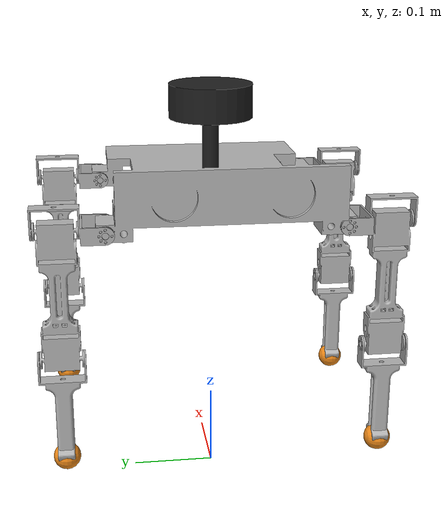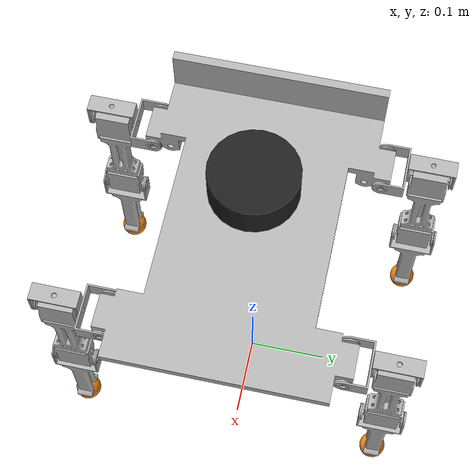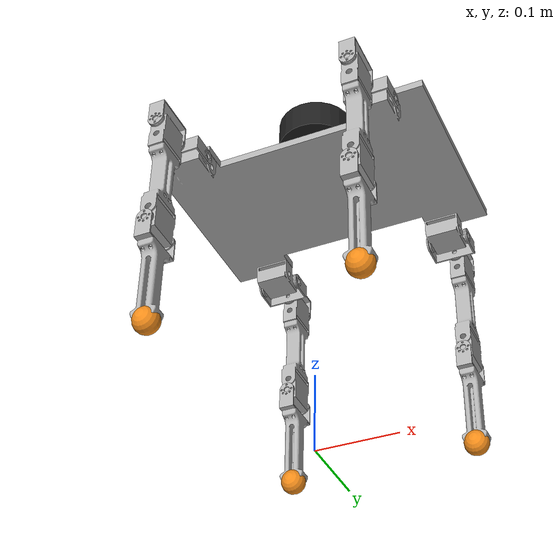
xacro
<?xml version="1.0" ?>
<robot name="FusionComponent" xmlns:xacro="http://www.ros.org/wiki/xacro">

<xacro:arg name="is_sim" default="true"/>

<xacro:include filename="$(find quadruped_description)/urdf/materials.xacro" />
<xacro:include filename="$(find quadruped_description)/urdf/bot_urdf_hii.gazebo" />
<xacro:include filename="$(find quadruped_description)/urdf/ros2_control.xacro" />
<xacro:include filename="$(find quadruped_description)/urdf/lidar.xacro" />

<xacro:macro name="box_inertia" params="m l w h xyz rpy">
  <inertial>
    <origin xyz="${xyz}" rpy="${rpy}" />
    <mass value="${m}" />
    <inertia ixx="${(m/12)*(h*h + l*l)}" ixy="0" ixz="0"
              iyy="${(m/12)*(w*w +l*l)}" iyz="0"
              izz="${(m/12)*(w*w + h*h)}" />
  </inertial>
</xacro:macro>

<link name="base_link">
<inertial>
  <origin xyz="0 0 0" rpy="0 0 0"/>
  <mass value="2.0"/>
  <inertia ixx="0.02303" iyy="0.02023" izz="0.03840"
           ixy="0.0" iyz="0.0" ixz="0.0"/>
</inertial>
  <visual>
    <origin xyz="0 0 0" rpy="0 0 0"/>
    <geometry>
      <mesh filename="file://$(find quadruped_description)/meshes/base_link.stl" scale="0.001 0.001 0.001"/>
    </geometry>
    <material name="silver"/>
  </visual>
  <collision>
    <origin xyz="0 0 0" rpy="0 0 0"/>
    <geometry>
      <mesh filename="file://$(find quadruped_description)/meshes/base_link.stl" scale="0.001 0.001 0.001"/>
    </geometry>
  </collision>
</link>

<link name="lb1">
  <inertial>
    <origin xyz="-0.0255 -0.0361 0.0088" rpy="0 0 0"/>
    <mass     value="0.1"/>
    <inertia  ixx="3.3e-05" iyy="3.3e-05" izz="6.7e-06"
              ixy="0.0"     iyz="0.0"     ixz="0.0"/>
  </inertial>
  <visual>
    <origin xyz="-0.159093 0.13841 -0.359825" rpy="0 0 0"/>
    <geometry>
      <mesh filename="file://$(find quadruped_description)/meshes/lb1_1.stl" scale="0.001 0.001 0.001"/>
    </geometry>
    <material name="silver"/>
  </visual>
  <collision>
    <origin xyz="-0.159093 0.13841 -0.359825" rpy="0 0 0"/>
    <geometry>
      <mesh filename="file://$(find quadruped_description)/meshes/lb1_1.stl" scale="0.001 0.001 0.001"/>
    </geometry>
  </collision>
</link>

<link name="lf1">
 <inertial>
    <origin xyz="-0.0255  0.0361 0.0088" rpy="0 0 0"/> <!-- mirrored Y -->
    <mass     value="0.1"/>
    <inertia  ixx="3.3e-05" iyy="3.3e-05" izz="6.7e-06"
              ixy="0.0"     iyz="0.0"     ixz="0.0"/>
  </inertial>
  <visual>
    <origin xyz="0.085907 0.13841 -0.359825" rpy="0 0 0"/>
    <geometry>
      <mesh filename="file://$(find quadruped_description)/meshes/lf1_1.stl" scale="0.001 0.001 0.001"/>
    </geometry>
    <material name="silver"/>
  </visual>
  <collision>
    <origin xyz="0.085907 0.13841 -0.359825" rpy="0 0 0"/>
    <geometry>
      <mesh filename="file://$(find quadruped_description)/meshes/lf1_1.stl" scale="0.001 0.001 0.001"/>
    </geometry>
  </collision>
</link>

<link name="rb1">
   <inertial>
    <origin xyz="-0.0255  0.0361 0.0088" rpy="0 0 0"/> <!-- mirrored Y -->
    <mass     value="0.1"/>
    <inertia  ixx="3.3e-05" iyy="3.3e-05" izz="6.7e-06"
              ixy="0.0"     iyz="0.0"     ixz="0.0"/>
  </inertial>
  <visual>
    <origin xyz="-0.159093 -0.13159 -0.359825" rpy="0 0 0"/>
    <geometry>
      <mesh filename="file://$(find quadruped_description)/meshes/rb1_1.stl" scale="0.001 0.001 0.001"/>
    </geometry>
    <material name="silver"/>
  </visual>
  <collision>
    <origin xyz="-0.159093 -0.13159 -0.359825" rpy="0 0 0"/>
    <geometry>
      <mesh filename="file://$(find quadruped_description)/meshes/rb1_1.stl" scale="0.001 0.001 0.001"/>
    </geometry>
  </collision>
</link>

<link name="rf1">
  <inertial>
    <origin xyz="-0.0255  0.0361 0.0088" rpy="0 0 0"/> <!-- mirrored Y -->
    <mass     value="0.1"/>
    <inertia  ixx="3.3e-05" iyy="3.3e-05" izz="6.7e-06"
              ixy="0.0"     iyz="0.0"     ixz="0.0"/>
  </inertial>
  <visual>
    <origin xyz="0.085907 -0.13159 -0.359825" rpy="0 0 0"/>
    <geometry>
      <mesh filename="file://$(find quadruped_description)/meshes/rf1_1.stl" scale="0.001 0.001 0.001"/>
    </geometry>
    <material name="silver"/>
  </visual>
  <collision>
    <origin xyz="0.085907 -0.13159 -0.359825" rpy="0 0 0"/>
    <geometry>
      <mesh filename="file://$(find quadruped_description)/meshes/rf1_1.stl" scale="0.001 0.001 0.001"/>
    </geometry>
  </collision>
</link>

<link name="lb2">
   <inertial>
    <origin xyz="0.0 -0.0250 -0.058" rpy="0 0 0"/>
    <mass     value="0.1"/>
    <inertia  ixx="9.5e-04" iyy="9.22e-04" izz="4.7e-05"
              ixy="0.0"     iyz="0.0"      ixz="0.0"/>
  </inertial>
  <visual>
    <origin xyz="-0.133593 0.16741 -0.359825" rpy="0 0 0"/>
    <geometry>
      <mesh filename="file://$(find quadruped_description)/meshes/lb2_1.stl" scale="0.001 0.001 0.001"/>
    </geometry>
    <material name="silver"/>
  </visual>
  <collision>
    <origin xyz="-0.133593 0.16741 -0.359825" rpy="0 0 0"/>
    <geometry>
      <mesh filename="file://$(find quadruped_description)/meshes/lb2_1.stl" scale="0.001 0.001 0.001"/>
    </geometry>
  </collision>
</link>

<link name="lf2">
 <inertial>
    <origin xyz="0.0 -0.0250 -0.058" rpy="0 0 0"/>
    <mass     value="0.1"/>
    <inertia  ixx="9.5e-04" iyy="9.22e-04" izz="4.7e-05"
              ixy="0.0"     iyz="0.0"      ixz="0.0"/>
  </inertial>
  <visual>
    <origin xyz="0.111407 0.16741 -0.359825" rpy="0 0 0"/>
    <geometry>
      <mesh filename="file://$(find quadruped_description)/meshes/lf2_1.stl" scale="0.001 0.001 0.001"/>
    </geometry>
    <material name="silver"/>
  </visual>
  <collision>
    <origin xyz="0.111407 0.16741 -0.359825" rpy="0 0 0"/>
    <geometry>
      <mesh filename="file://$(find quadruped_description)/meshes/lf2_1.stl" scale="0.001 0.001 0.001"/>
    </geometry>
  </collision>
</link>

<link name="rb2">
  <inertial>
    <origin xyz="0.0  0.0250 -0.058" rpy="0 0 0"/>  <!-- mirrored Y -->
    <mass     value="0.1"/>
    <inertia  ixx="9.5e-04" iyy="9.22e-04" izz="4.7e-05"
              ixy="0.0"     iyz="0.0"      ixz="0.0"/>
  </inertial>
  <visual>
    <origin xyz="-0.133593 -0.16059 -0.359825" rpy="0 0 0"/>
    <geometry>
      <mesh filename="file://$(find quadruped_description)/meshes/rb2_1.stl" scale="0.001 0.001 0.001"/>
    </geometry>
    <material name="silver"/>
  </visual>
  <collision>
    <origin xyz="-0.133593 -0.16059 -0.359825" rpy="0 0 0"/>
    <geometry>
      <mesh filename="file://$(find quadruped_description)/meshes/rb2_1.stl" scale="0.001 0.001 0.001"/>
    </geometry>
  </collision>
</link>

<link name="rf2">
  <inertial>
    <origin xyz="0.0  0.0250 -0.058" rpy="0 0 0"/>  <!-- mirrored Y -->
    <mass     value="0.1"/>
    <inertia  ixx="9.5e-04" iyy="9.22e-04" izz="4.7e-05"
              ixy="0.0"     iyz="0.0"      ixz="0.0"/>
  </inertial>
  <visual>
    <origin xyz="0.111407 -0.16059 -0.359825" rpy="0 0 0"/>
    <geometry>
      <mesh filename="file://$(find quadruped_description)/meshes/rf2_1.stl" scale="0.001 0.001 0.001"/>
    </geometry>
    <material name="silver"/>
  </visual>
  <collision>
    <origin xyz="0.111407 -0.16059 -0.359825" rpy="0 0 0"/>
    <geometry>
      <mesh filename="file://$(find quadruped_description)/meshes/rf2_1.stl" scale="0.001 0.001 0.001"/>
    </geometry>
  </collision>
</link>

<link name="lb3">
  <inertial>
  <origin xyz="0.0 -0.0255 -0.070" rpy="0 0 0"/>
  <mass value="0.2"/>
  <inertia ixx="0.00013" iyy="0.000126" izz="0.000012"
           ixy="0.0" iyz="0.0" ixz="0.0"/>
</inertial>
  <visual>
    <origin xyz="-0.133593 0.16741 -0.205825" rpy="0 0 0"/>
    <geometry>
      <mesh filename="file://$(find quadruped_description)/meshes/lb3_1.stl" scale="0.001 0.001 0.001"/>
    </geometry>
    <material name="silver"/>
  </visual>
  <collision>
    <origin xyz="-0.133593 0.16741 -0.205825" rpy="0 0 0"/>
    <geometry>
      <mesh filename="file://$(find quadruped_description)/meshes/lb3_1.stl" scale="0.001 0.001 0.001"/>
    </geometry>
  </collision>
</link>

<link name="lf3">
  <inertial>
  <origin xyz="0.0 -0.0255 -0.070" rpy="0 0 0"/>
  <mass value="0.2"/>
  <inertia ixx="0.00013" iyy="0.000126" izz="0.000012"
           ixy="0.0" iyz="0.0" ixz="0.0"/>
</inertial>
  <visual>
    <origin xyz="0.111407 0.16741 -0.205825" rpy="0 0 0"/>
    <geometry>
      <mesh filename="file://$(find quadruped_description)/meshes/lf3_1.stl" scale="0.001 0.001 0.001"/>
    </geometry>
    <material name="silver"/>
  </visual>
  <collision>
    <origin xyz="0.111407 0.16741 -0.205825" rpy="0 0 0"/>
    <geometry>
      <mesh filename="file://$(find quadruped_description)/meshes/lf3_1.stl" scale="0.001 0.001 0.001"/>
    </geometry>
  </collision>
</link>

<link name="rb3">
<inertial>
  <origin xyz="0.0 -0.0255 -0.070" rpy="0 0 0"/>
  <mass value="0.2"/>
  <inertia ixx="0.00013" iyy="0.000126" izz="0.000012"
           ixy="0.0" iyz="0.0" ixz="0.0"/>
</inertial>
  <visual>
    <origin xyz="-0.133593 -0.16059 -0.205825" rpy="0 0 0"/>
    <geometry>
      <mesh filename="file://$(find quadruped_description)/meshes/rb3_1.stl" scale="0.001 0.001 0.001"/>
    </geometry>
    <material name="silver"/>
  </visual>
  <collision>
    <origin xyz="-0.133593 -0.16059 -0.205825" rpy="0 0 0"/>
    <geometry>
      <mesh filename="file://$(find quadruped_description)/meshes/rb3_1.stl" scale="0.001 0.001 0.001"/>
    </geometry>
  </collision>
</link>

<link name="rf3">
  <inertial>
  <origin xyz="0.0 -0.0255 -0.070" rpy="0 0 0"/>
  <mass value="0.2"/>
  <inertia ixx="0.00013" iyy="0.000126" izz="0.000012"
           ixy="0.0" iyz="0.0" ixz="0.0"/>
</inertial>
  <visual>
    <origin xyz="0.111407 -0.16059 -0.205825" rpy="0 0 0"/>
    <geometry>
      <mesh filename="file://$(find quadruped_description)/meshes/rf3_1.stl" scale="0.001 0.001 0.001"/>
    </geometry>
    <material name="silver"/>
  </visual>
  <collision>
    <origin xyz="0.111407 -0.16059 -0.205825" rpy="0 0 0"/>
    <geometry>
      <mesh filename="file://$(find quadruped_description)/meshes/rf3_1.stl" scale="0.001 0.001 0.001"/>
    </geometry>
  </collision>
</link>

<link name="leg_rb_tip">
<inertial>
    <origin xyz="0 0 0" rpy="0 0 0"/>
    <mass value="0.01"/> <!-- 10 grams -->
    <!-- Inertia of solid sphere: I = (2/5) * m * r^2 -->
    <inertia
      ixx="5.12e-08" iyy="5.12e-08" izz="5.12e-08"
      ixy="0.0" iyz="0.0" ixz="0.0"/>
  </inertial>

<visual>
            <origin rpy="0 0 0" xyz="0 0 0"/>
            <geometry>
                <sphere radius="0.016"/>
            </geometry>
            <material name="orange"/>
        </visual>
        <collision>
            <origin rpy="0 0 0" xyz="0 0 0"/>
            <geometry>
                <sphere radius="0.016"/>
            </geometry>
            <surface>
                <friction>
                    <ode>
                        <mu>0.6</mu>
                        <mu2>0.6</mu2>
                        <fdir1>1 0 0</fdir1>
                    </ode>
                </friction>
            </surface>
        </collision>
</link>
<link name="leg_rf_tip">
<inertial>
    <origin xyz="0 0 0" rpy="0 0 0"/>
    <mass value="0.01"/> <!-- 10 grams -->
    <!-- Inertia of solid sphere: I = (2/5) * m * r^2 -->
    <inertia
      ixx="5.12e-08" iyy="5.12e-08" izz="5.12e-08"
      ixy="0.0" iyz="0.0" ixz="0.0"/>
  </inertial>

<visual>
            <origin rpy="0 0 0" xyz="0 0 0"/>
            <geometry>
                <sphere radius="0.016"/>
            </geometry>
            <material name="orange"/>
        </visual>
        <collision>
            <origin rpy="0 0 0" xyz="0 0 0"/>
            <geometry>
                <sphere radius="0.016"/>
            </geometry>
            <surface>
                <friction>
                    <ode>
                        <mu>0.6</mu>
                        <mu2>0.6</mu2>
                        <fdir1>1 0 0</fdir1>
                    </ode>
                </friction>
            </surface>
        </collision>
</link>
<link name="leg_lb_tip">
<inertial>
    <origin xyz="0 0 0" rpy="0 0 0"/>
    <mass value="0.01"/> <!-- 10 grams -->
    <!-- Inertia of solid sphere: I = (2/5) * m * r^2 -->
    <inertia
      ixx="5.12e-08" iyy="5.12e-08" izz="5.12e-08"
      ixy="0.0" iyz="0.0" ixz="0.0"/>
  </inertial>

<visual>
            <origin rpy="0 0 0" xyz="0 0 0"/>
            <geometry>
                <sphere radius="0.016"/>
            </geometry>
            <material name="orange"/>
        </visual>
        <collision>
            <origin rpy="0 0 0" xyz="0 0 0"/>
            <geometry>
                <sphere radius="0.016"/>
            </geometry>
            <surface>
                <friction>
                    <ode>
                        <mu>0.6</mu>
                        <mu2>0.6</mu2>
                        <fdir1>1 0 0</fdir1>
                    </ode>
                </friction>
            </surface>
        </collision>
</link>
<link name="leg_lf_tip">
<inertial>
    <origin xyz="0 0 0" rpy="0 0 0"/>
    <mass value="0.01"/> <!-- 10 grams -->
    <!-- Inertia of solid sphere: I = (2/5) * m * r^2 -->
    <inertia
      ixx="5.12e-08" iyy="5.12e-08" izz="5.12e-08"
      ixy="0.0" iyz="0.0" ixz="0.0"/>
  </inertial>

<visual>
            <origin rpy="0 0 0" xyz="0 0 0"/>
            <geometry>
                <sphere radius="0.016"/>
            </geometry>
            <material name="orange"/>
        </visual>
        <collision>
            <origin rpy="0 0 0" xyz="0 0 0"/>
            <geometry>
                <sphere radius="0.016"/>
            </geometry>
            <surface>
                <friction>
                    <ode>
                        <mu>0.6</mu>
                        <mu2>0.6</mu2>
                        <fdir1>1 0 0</fdir1>
                    </ode>
                </friction>
            </surface>
        </collision>
</link>

<joint name="lb1_base" type="revolute">
  <origin xyz="0.159093 -0.13841 0.359825" rpy="0 0 0"/>
  <parent link="base_link"/>
  <child link="lb1"/>
  <axis xyz="1.0 0.0 0.0"/>
  <limit upper="1.570796" lower="-1.570796" effort="100" velocity="100"/>
</joint>

<joint name="lf1_base" type="revolute">
  <origin xyz="-0.085907 -0.13841 0.359825" rpy="0 0 0"/>
  <parent link="base_link"/>
  <child link="lf1"/>
  <axis xyz="1.0 0.0 0.0"/>
  <limit upper="1.570796" lower="-1.570796" effort="100" velocity="100"/>
</joint>

<joint name="rb1_base" type="revolute">
  <origin xyz="0.159093 0.13159 0.359825" rpy="0 0 0"/>
  <parent link="base_link"/>
  <child link="rb1"/>
  <axis xyz="-1.0 0.0 0.0"/>
  <limit upper="1.570796" lower="-1.570796" effort="100" velocity="100"/>
</joint>

<joint name="rf1_base" type="revolute">
  <origin xyz="-0.085907 0.13159 0.359825" rpy="0 0 0"/>
  <parent link="base_link"/>
  <child link="rf1"/>
  <axis xyz="-1.0 0.0 0.0"/>
  <limit upper="1.570796" lower="-1.570796" effort="100" velocity="100"/>
</joint>

<joint name="lb1_2" type="revolute">
  <origin xyz="-0.0255 -0.029 0.0" rpy="0 0 0"/>
  <parent link="lb1"/>
  <child link="lb2"/>
  <axis xyz="-0.0 -1.0 -0.0"/>
  <limit upper="1.570796" lower="-1.570796" effort="100" velocity="100"/>
</joint>

<joint name="lf1_2" type="revolute">
  <origin xyz="-0.0255 -0.029 0.0" rpy="0 0 0"/>
  <parent link="lf1"/>
  <child link="lf2"/>
  <axis xyz="0.0 -1.0 -0.0"/>
  <limit upper="1.570796" lower="-1.570796" effort="100" velocity="100"/>
</joint>

<joint name="rb1_2" type="revolute">
  <origin xyz="-0.0255 0.029 0.0" rpy="0 0 0"/>
  <parent link="rb1"/>
  <child link="rb2"/>
  <axis xyz="0.0 1.0 0.0"/>
  <limit upper="1.570796" lower="-1.570796" effort="100" velocity="100"/>
</joint>

<joint name="rf1_2" type="revolute">
  <origin xyz="-0.0255 0.029 0.0" rpy="0 0 0"/>
  <parent link="rf1"/>
  <child link="rf2"/>
  <axis xyz="-0.0 1.0 0.0"/>
  <limit upper="1.570796" lower="-1.570796" effort="100" velocity="100"/>
</joint>

<joint name="lb2_3" type="revolute">
  <origin xyz="0.0 0.0 -0.154" rpy="0 0 0"/>
  <parent link="lb2"/>
  <child link="lb3"/>
  <axis xyz="0.0 -1.0 -0.0"/>
  <limit upper="1.570796" lower="-1.570796" effort="100" velocity="100"/>
</joint>

<joint name="lf2_3" type="revolute">
  <origin xyz="0.0 0.0 -0.154" rpy="0 0 0"/>
  <parent link="lf2"/>
  <child link="lf3"/>
  <axis xyz="0.0 -1.0 -0.0"/>
  <limit upper="1.570796" lower="-1.570796" effort="100" velocity="100"/>
</joint>

<joint name="rb2_3" type="revolute">
  <origin xyz="0.0 0.0 -0.154" rpy="0 0 0"/>
  <parent link="rb2"/>
  <child link="rb3"/>
  <axis xyz="-0.0 1.0 -0.0"/>
  <limit upper="1.570796" lower="-1.570796" effort="100" velocity="100"/>
</joint>

<joint name="rf2_3" type="revolute">
  <origin xyz="0.0 0.0 -0.154" rpy="0 0 0"/>
  <parent link="rf2"/>
  <child link="rf3"/>
  <axis xyz="-0.0 1.0 -0.0"/>
  <limit upper="1.570796" lower="-1.570796" effort="100" velocity="100"/>
</joint>

<joint name="Fixed_tip_rb" type="fixed">
  <origin xyz="-0.0 0.025 -0.125" rpy="1.57 1.57 3.14"/>
  <parent link="rb3"/>
  <child link="leg_rb_tip"/>
</joint>

<joint name="Fixed_tip_rf" type="fixed">
  <origin xyz="-0.0 0.025 -0.125" rpy="1.57 1.57 3.14"/>
  <parent link="rf3"/>
  <child link="leg_rf_tip"/>
</joint>

<joint name="Fixed_tip_lb" type="fixed">
  <origin xyz="-0.0 -0.025 -0.125" rpy="1.57 1.57 0.0"/>
  <parent link="lb3"/>
  <child link="leg_lb_tip"/>
</joint>

<joint name="Fixed_tip_lf" type="fixed">
  <origin xyz="-0.0 -0.025 -0.125" rpy="1.57 1.57 0.0"/>
  <parent link="lf3"/>
  <child link="leg_lf_tip"/>
</joint>

</robot>

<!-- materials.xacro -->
<robot name="FusionComponent" xmlns:xacro="http://www.ros.org/wiki/xacro" >

<material name="silver">
  <color rgba="0.700 0.700 0.700 1.000"/>
</material>

</robot>

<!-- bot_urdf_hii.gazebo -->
<robot name="FusionComponent" xmlns:xacro="http://www.ros.org/wiki/xacro" >

<xacro:property name="body_color" value="Gazebo/Silver" />

<gazebo reference="base_link">
  <material>${body_color}</material>
  <mu1>0.2</mu1>
  <mu2>0.2</mu2>
  <selfCollide>true</selfCollide>
  <gravity>true</gravity>
</gazebo>

<gazebo reference="lb1">
  <material>${body_color}</material>
  <mu1>0.2</mu1>
  <mu2>0.2</mu2>
  <selfCollide>true</selfCollide>
</gazebo>

<gazebo reference="lf1">
  <material>${body_color}</material>
  <mu1>0.2</mu1>
  <mu2>0.2</mu2>
  <selfCollide>true</selfCollide>
</gazebo>

<gazebo reference="rb1">
  <material>${body_color}</material>
  <mu1>0.2</mu1>
  <mu2>0.2</mu2>
  <selfCollide>true</selfCollide>
</gazebo>

<gazebo reference="rf1">
  <material>${body_color}</material>
  <mu1>0.2</mu1>
  <mu2>0.2</mu2>
  <selfCollide>true</selfCollide>
</gazebo>

<gazebo reference="lb2">
  <material>${body_color}</material>
  <mu1>0.2</mu1>
  <mu2>0.2</mu2>
  <selfCollide>true</selfCollide>
</gazebo>

<gazebo reference="lf2">
  <material>${body_color}</material>
  <mu1>0.2</mu1>
  <mu2>0.2</mu2>
  <selfCollide>true</selfCollide>
</gazebo>

<gazebo reference="rb2">
  <material>${body_color}</material>
  <mu1>0.2</mu1>
  <mu2>0.2</mu2>
  <selfCollide>true</selfCollide>
</gazebo>

<gazebo reference="rf2">
  <material>${body_color}</material>
  <mu1>0.2</mu1>
  <mu2>0.2</mu2>
  <selfCollide>true</selfCollide>
</gazebo>

<gazebo reference="lb3">
 <mu1>1.5</mu1>
<mu2>1.5</mu2>
<fdir1>1 1 0</fdir1>
<kp value="3000000.0"/>
<kd value="2000.0"/>
<maxVel>0.05</maxVel>
<self_collide>1</self_collide>
<minDepth>0.005</minDepth>
<restitution_coefficient>0.0</restitution_coefficient>
<threshold>0.2</threshold>
<material>Gazebo/DarkGrey</material>
</gazebo>

<gazebo reference="lf3">
 <mu1>1.5</mu1>
<mu2>1.5</mu2>
<fdir1>1 1 0</fdir1>
<kp value="3000000.0"/>
<kd value="2000.0"/>
<maxVel>0.05</maxVel>
<self_collide>1</self_collide>
<minDepth>0.005</minDepth>
<restitution_coefficient>0.0</restitution_coefficient>
<threshold>0.2</threshold>
<material>Gazebo/DarkGrey</material>
</gazebo>

<gazebo reference="rb3">
 <mu1>1.5</mu1>
<mu2>1.5</mu2>
<fdir1>1 1 0</fdir1>
<kp value="3000000.0"/>
<kd value="2000.0"/>
<maxVel>0.05</maxVel>
<self_collide>1</self_collide>
<minDepth>0.005</minDepth>
<restitution_coefficient>0.0</restitution_coefficient>
<threshold>0.2</threshold>
<material>Gazebo/DarkGrey</material>
</gazebo>

<gazebo reference="rf3">
<mu1>1.5</mu1>
<mu2>1.5</mu2>
<fdir1>1 1 0</fdir1>
<kp value="3000000.0"/>
<kd value="2000.0"/>
<maxVel>0.05</maxVel>
<self_collide>1</self_collide>
<minDepth>0.005</minDepth>
<restitution_coefficient>0.0</restitution_coefficient>
<threshold>0.2</threshold>
<material>Gazebo/DarkGrey</material>
</gazebo>

<gazebo reference="leg_rb_tip">
 <mu1>1.5</mu1>
<mu2>1.5</mu2>
<fdir1>1 1 0</fdir1>
<kp value="3000000.0"/>
<kd value="2000.0"/>
<maxVel>0.05</maxVel>
<self_collide>1</self_collide>
<minDepth>0.005</minDepth>
<restitution_coefficient>0.0</restitution_coefficient>
<threshold>0.2</threshold>
<material>Gazebo/DarkGrey</material>
</gazebo>

<gazebo reference="leg_rf_tip">
  <mu1>1.5</mu1>
<mu2>1.5</mu2>
<fdir1>1 1 0</fdir1>
<kp value="3000000.0"/>
<kd value="2000.0"/>
<maxVel>0.05</maxVel>
<self_collide>1</self_collide>
<minDepth>0.005</minDepth>
<restitution_coefficient>0.0</restitution_coefficient>
<threshold>0.2</threshold>
<material>Gazebo/DarkGrey</material>
</gazebo>

<gazebo reference="leg_lb_tip">
 <mu1>1.5</mu1>
<mu2>1.5</mu2>
<fdir1>1 1 0</fdir1>
<kp value="3000000.0"/>
<kd value="2000.0"/>
<maxVel>0.05</maxVel>
<self_collide>1</self_collide>
<minDepth>0.005</minDepth>
<restitution_coefficient>0.0</restitution_coefficient>
<threshold>0.2</threshold>
<material>Gazebo/DarkGrey</material>
</gazebo>

<gazebo reference="leg_lf_tip">
  <mu1>1.5</mu1>
<mu2>1.5</mu2>
<fdir1>1 1 0</fdir1>
<kp value="3000000.0"/>
<kd value="2000.0"/>
<maxVel>0.05</maxVel>
<self_collide>1</self_collide>
<minDepth>0.005</minDepth>
<restitution_coefficient>0.0</restitution_coefficient>
<threshold>0.2</threshold>
<material>Gazebo/DarkGrey</material>
</gazebo>

</robot>

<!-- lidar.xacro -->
<robot xmlns:xacro="http://www.ros.org/wiki/xacro" >

    <joint name="laser_joint" type="fixed">
        <parent link="base_link"/>
        <child link="laser_frame"/>
        <origin xyz="0.0 0 0.48" rpy="0 0 0"/>
    </joint>

    <link name="laser_frame">
        <visual>
            <geometry>
                <cylinder radius="0.05" length="0.04"/>
            </geometry>
            <material name="black"/>
        </visual>
        <visual>
            <origin xyz="0 0 -0.05"/>
            <geometry>
                <cylinder radius="0.01" length="0.1"/>
            </geometry>
            <material name="black"/>
        </visual>
        <collision>
            <geometry>
                <cylinder radius="0.05" length="0.04"/>
            </geometry>
        </collision>
    </link>

</robot>
